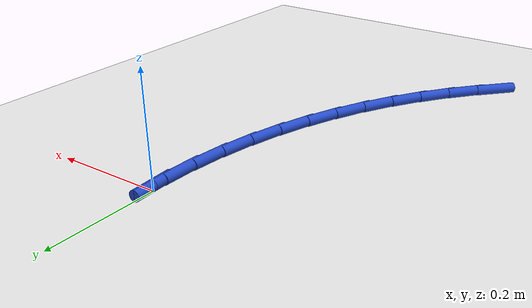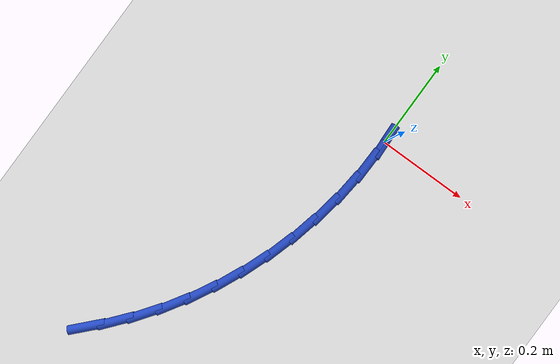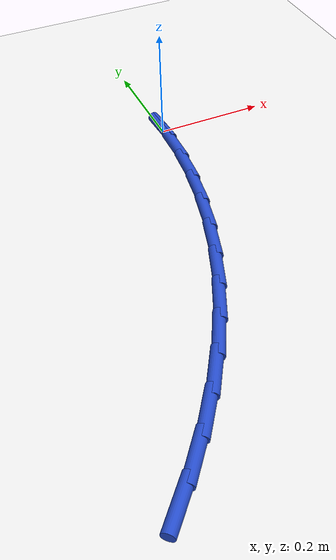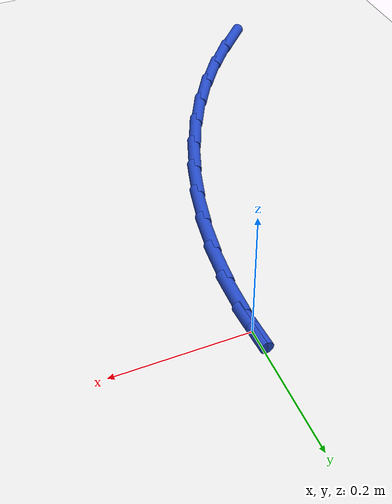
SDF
<sdf version="1.6">
 <world name="default">
  <model name="ground_plane">
   <static>1</static>
   <link name="link">
    <collision name="collision">
     <geometry><plane><normal>0 0 1</normal><size>100 100</size></plane></geometry>
     <surface><friction><ode><mu>100</mu><mu2>50</mu2></ode></friction></surface>
    </collision>
    <visual name="visual">
     <cast_shadows>0</cast_shadows>
     <geometry><plane><normal>0 0 1</normal><size>100 100</size></plane></geometry>
     <material>
      <script><uri>file://media/materials/scripts/gazebo.material</uri><name>Gazebo/WhiteGlow</name></script>
     </material>
    </visual>
   </link>
  </model>
  <model name="line">
   <link name="link_0">
    <pose>-1.0408340855860843e-17 5.551115123125783e-17 0.01 0 1.57 -1.522188481303115</pose>
    <collision name="collision">
     <geometry><cylinder><radius>0.01</radius><length>0.08</length></cylinder></geometry>
    </collision>
    <visual name="visual">
     <material>
      <script><name>Gazebo/Blue</name><uri>file://media/materials/scripts/gazebo.material</uri></script>
     </material>
     <geometry><cylinder><radius>0.01</radius><length>0.08</length></cylinder></geometry>
    </visual>
   </link>
   <link name="link_98">
    <pose>-0.2762732757616296 -0.6849414563227925 0.01 0 1.57 0.824458723653254</pose>
    <collision name="collision">
     <geometry><cylinder><radius>0.01</radius><length>0.08</length></cylinder></geometry>
    </collision>
    <visual name="visual">
     <material>
      <script><name>Gazebo/Blue</name><uri>file://media/materials/scripts/gazebo.material</uri></script>
     </material>
     <geometry><cylinder><radius>0.01</radius><length>0.08</length></cylinder></geometry>
    </visual>
   </link>
   <link name="link_99">
    <pose>-0.23353203380140375 -0.6387236560602763 0.01 0 1.57 0.8875056618110483</pose>
    <collision name="collision">
     <geometry><cylinder><radius>0.01</radius><length>0.08</length></cylinder></geometry>
    </collision>
    <visual name="visual">
     <material>
      <script><name>Gazebo/Blue</name><uri>file://media/materials/scripts/gazebo.material</uri></script>
     </material>
     <geometry><cylinder><radius>0.01</radius><length>0.08</length></cylinder></geometry>
    </visual>
   </link>
   <link name="link_100">
    <pose>-0.19380056411482138 -0.5899205987510157 0.01 0 1.57 0.9538746812838494</pose>
    <collision name="collision">
     <geometry><cylinder><radius>0.01</radius><length>0.08</length></cylinder></geometry>
    </collision>
    <visual name="visual">
     <material>
      <script><name>Gazebo/Blue</name><uri>file://media/materials/scripts/gazebo.material</uri></script>
     </material>
     <geometry><cylinder><radius>0.01</radius><length>0.08</length></cylinder></geometry>
    </visual>
   </link>
   <link name="link_101">
    <pose>-0.1573603876942134 -0.538543719656406 0.01 0 1.57 1.022570293233298</pose>
    <collision name="collision">
     <geometry><cylinder><radius>0.01</radius><length>0.08</length></cylinder></geometry>
    </collision>
    <visual name="visual">
     <material>
      <script><name>Gazebo/Blue</name><uri>file://media/materials/scripts/gazebo.material</uri></script>
     </material>
     <geometry><cylinder><radius>0.01</radius><length>0.08</length></cylinder></geometry>
    </visual>
   </link>
   <link name="link_102">
    <pose>-0.12445656676385063 -0.48466195202679785 0.01 0 1.57 1.0902570507860578</pose>
    <collision name="collision">
     <geometry><cylinder><radius>0.01</radius><length>0.08</length></cylinder></geometry>
    </collision>
    <visual name="visual">
     <material>
      <script><name>Gazebo/Blue</name><uri>file://media/materials/scripts/gazebo.material</uri></script>
     </material>
     <geometry><cylinder><radius>0.01</radius><length>0.08</length></cylinder></geometry>
    </visual>
   </link>
   <link name="link_103">
    <pose>-0.09520473891924869 -0.42854834066846464 0.01 0 1.57 1.1565643562784866</pose>
    <collision name="collision">
     <geometry><cylinder><radius>0.01</radius><length>0.08</length></cylinder></geometry>
    </collision>
    <visual name="visual">
     <material>
      <script><name>Gazebo/Blue</name><uri>file://media/materials/scripts/gazebo.material</uri></script>
     </material>
     <geometry><cylinder><radius>0.01</radius><length>0.08</length></cylinder></geometry>
    </visual>
   </link>
   <link name="link_104">
    <pose>-0.06969183570316485 -0.37052120181050247 0.01 0 1.57 1.2219335947899597</pose>
    <collision name="collision">
     <geometry><cylinder><radius>0.01</radius><length>0.08</length></cylinder></geometry>
    </collision>
    <visual name="visual">
     <material>
      <script><name>Gazebo/Blue</name><uri>file://media/materials/scripts/gazebo.material</uri></script>
     </material>
     <geometry><cylinder><radius>0.01</radius><length>0.08</length></cylinder></geometry>
    </visual>
   </link>
   <link name="link_105">
    <pose>-0.048004788658357785 -0.3108988516820103 0.01 0 1.57 1.286820939252489</pose>
    <collision name="collision">
     <geometry><cylinder><radius>0.01</radius><length>0.08</length></cylinder></geometry>
    </collision>
    <visual name="visual">
     <material>
      <script><name>Gazebo/Blue</name><uri>file://media/materials/scripts/gazebo.material</uri></script>
     </material>
     <geometry><cylinder><radius>0.01</radius><length>0.08</length></cylinder></geometry>
    </visual>
   </link>
   <link name="link_106">
    <pose>-0.03023052932758501 -0.2499996065120841 0.01 0 1.57 1.3516905744697891</pose>
    <collision name="collision">
     <geometry><cylinder><radius>0.01</radius><length>0.08</length></cylinder></geometry>
    </collision>
    <visual name="visual">
     <material>
      <script><name>Gazebo/Blue</name><uri>file://media/materials/scripts/gazebo.material</uri></script>
     </material>
     <geometry><cylinder><radius>0.01</radius><length>0.08</length></cylinder></geometry>
    </visual>
   </link>
   <link name="link_107">
    <pose>-0.01645598925360496 -0.18814178252982308 0.01 0 1.57 1.4170093101145864</pose>
    <collision name="collision">
     <geometry><cylinder><radius>0.01</radius><length>0.08</length></cylinder></geometry>
    </collision>
    <visual name="visual">
     <material>
      <script><name>Gazebo/Blue</name><uri>file://media/materials/scripts/gazebo.material</uri></script>
     </material>
     <geometry><cylinder><radius>0.01</radius><length>0.08</length></cylinder></geometry>
    </visual>
   </link>
   <link name="link_108">
    <pose>-0.006768099979175331 -0.12564369596432326 0.01 0 1.57 1.4832413097648864</pose>
    <collision name="collision">
     <geometry><cylinder><radius>0.01</radius><length>0.08</length></cylinder></geometry>
    </collision>
    <visual name="visual">
     <material>
      <script><name>Gazebo/Blue</name><uri>file://media/materials/scripts/gazebo.material</uri></script>
     </material>
     <geometry><cylinder><radius>0.01</radius><length>0.08</length></cylinder></geometry>
    </visual>
   </link>
   <link name="link_109">
    <pose>-0.0012537930470543843 -0.0628236630446835 0.01 0 1.57 1.5508416382890116</pose>
    <collision name="collision">
     <geometry><cylinder><radius>0.01</radius><length>0.08</length></cylinder></geometry>
    </collision>
    <visual name="visual">
     <material>
      <script><name>Gazebo/Blue</name><uri>file://media/materials/scripts/gazebo.material</uri></script>
     </material>
     <geometry><cylinder><radius>0.01</radius><length>0.08</length></cylinder></geometry>
    </visual>
   </link>
   <link name="link_110">
    <pose>-1.0408340855860843e-17 1.3877787807814457e-16 0.01 0 1.57 -1.521345345797145</pose>
    <collision name="collision">
     <geometry><cylinder><radius>0.01</radius><length>0.08</length></cylinder></geometry>
    </collision>
    <visual name="visual">
     <material>
      <script><name>Gazebo/Blue</name><uri>file://media/materials/scripts/gazebo.material</uri></script>
     </material>
     <geometry><cylinder><radius>0.01</radius><length>0.08</length></cylinder></geometry>
    </visual>
   </link>
  </model>
 </world>
</sdf>
